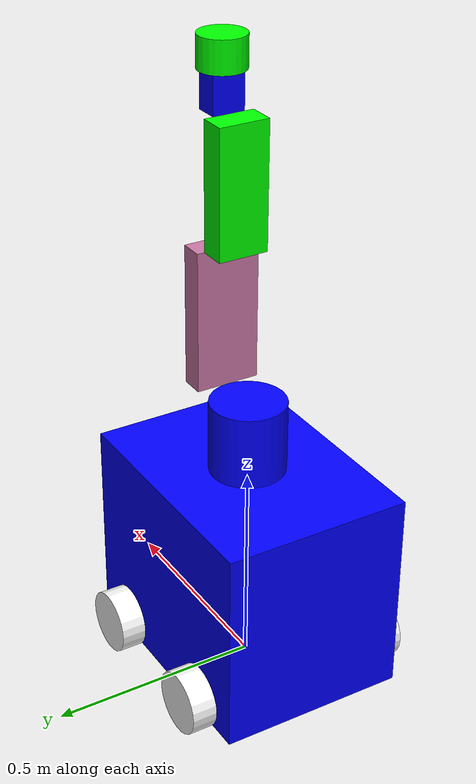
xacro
<?xml version="1.0"?>

<robot name="complete_M.A.R.S_prototype2" xmlns:xacro="http://www.ros.org/wiki/xacro">
<xacro:property name="radius" value="0.075" />
<xacro:property name="length" value="0.06" />

<!--MATERIAL COLORS -->
  <material name="blue">
    <color rgba="0 0 1 1"/>
  </material>

<material name="red">
    <color rgba="1 0 0 1"/>
  </material>

<material name="pink">
    <color rgba="0.8 0 1 0.5"/>
  </material>

    <material name="white">
    <color rgba="1 1 1 1"/>
  </material>

  <material name="green">
    <color rgba="0 1 0 1"/>
</material>

<gazebo reference="base_link_to_wheel1">
  <material>Gazebo/orange</material>
</gazebo>

<!-- Macros for inertia matrix calculations-->
<property name="M_PI" value="3.1415926535897931" />
 <xacro:macro name="sphere_inertial" params="radius mass">
    <inertial>
      <mass value="${mass}" />
      <origin xyz="0 0 0" />
      <inertia ixx="${0.4 * mass * radius * radius}" ixy="0.0" ixz="0.0"
        iyy="${0.4 * mass * radius * radius}" iyz="0.0"
        izz="${0.4 * mass * radius * radius}" />
    </inertial>
  </xacro:macro>

  <xacro:macro name="cylinder_inertial" params="radius length mass">
    <inertial>
      <mass value="${mass}" />
      <origin xyz="0 0 0" />
      <inertia ixx="${0.0833333 * mass * (3 * radius * radius + length * length)}" ixy="0.0" ixz="0.0"
        iyy="${0.0833333 * mass * (3 * radius * radius + length * length)}" iyz="0.0"
        izz="${0.5 * mass * radius * radius}" />
    </inertial>
  </xacro:macro>

    <xacro:macro name="box_inertial" params="x y z mass">
    <inertial>
      <mass value="${mass}" />
      <origin xyz="0 0 0" />
      <inertia ixx="${ 0.0833333 * mass * ( y * y + z * z )}" ixy="0.0" ixz="0.0"
        iyy="${0.0833333 * mass * ( x * x + z * z )}" iyz="0.0"
        izz="${0.0833333 * mass * (x * x + y * y)}" />
    </inertial>
</xacro:macro>

<!--  VISUAL -->
  <link name="base_link">
    <visual>
      <geometry>
        <box size="0.6 0.45 0.50"/>
       </geometry>
      <origin rpy="0 0 0" xyz="0 0 0.275"/>
       <material name="blue"/>
    </visual>
<!--  COLLISION -->
    <collision>
      <geometry>
       <box size="0.6 0.45 0.50"/>

      </geometry>
      <origin rpy="0 0 0" xyz="0 0 0.275"/>
    </collision>
<!--  INERTIAL -->
    <inertial>
      <mass value="5.0"/>

      <inertia
          ixx="0.2541" ixy="0" ixz="0"
          iyy="1.1718" iyz="0"
          izz="0.9270"
      />
    </inertial>

  </link>

 <joint name="base_link_to_wheel1" type="continuous">
  <axis xyz="0 1 0"/>
<origin rpy="0 0 0" xyz="0.17 0.255 0.075"/>
 <limit effort="100" velocity="100"/>
 <joint_properties damping="0.0" friction="0.0"/>
    <parent link="base_link"/>
    <child link="wheel1"/>

  </joint>
<!--WHEEL_1-->
  <link name="wheel1">
    <visual>
      <geometry>
      <cylinder radius="${radius}" length="${length}"/>

      </geometry>
       <origin rpy="0 1.57075 1.57075" xyz="0 0 0"/>
        <material name="white"/>
    </visual>
     <collision>
     <origin rpy="0 1.57075 1.57075" xyz="0 0 0"/>
      <geometry>
         <cylinder radius="${radius}" length="${length}"/>
      </geometry>
    </collision>
 <inertial>
      <origin xyz="0 0 0" rpy="0 1.5707 1.5707"/>
      <mass value="0.4"/>
      <cylinder_inertia m="0.4" r="0.075" h="0.06"/>
      <inertia
        ixx="0.0006825" ixy="0.0" ixz="0.0"
        iyy="0.0006825" iyz="0.0"
        izz="0.00045"/>
    </inertial>

  </link>

<!--WHEEL_2-->
<link name="wheel2">
    <visual>
      <geometry>
         <cylinder radius="${radius}" length="${length}"/>
      </geometry>
       <origin rpy="0 1.57075 1.57075" xyz="0 0 0"/>
       <material name="white"/>
    </visual>
     <collision>
     <origin rpy="0 1.57075 1.57075" xyz="0 0 0"/>
      <geometry>
         <cylinder radius="${radius}" length="${length}"/>
      </geometry>
    </collision>

    <inertial>
      <origin xyz="0 0 0" rpy="0 1.5707 1.5707"/>
      <mass value="0.4"/>
      <cylinder_inertia m="0.4" r="0.075" h="0.06"/>
      <inertia
        ixx="0.0006825" ixy="0.0" ixz="0.0"
        iyy="0.0006825" iyz="0.0"
        izz="0.00045"/>
    </inertial>
  </link>

<joint name="base_link_to_wheel2" type="continuous">
    <parent link="base_link"/>
    <child link="wheel2"/>
    <origin rpy="0 0 0" xyz="-0.17 0.255 0.075"/>
    <limit effort="100" velocity="100"/>
    <joint_properties damping="0.0" friction="0.0"/>
    <axis xyz="0 1 0"/>

  </joint>
<!--WHEEL_3-->
<link name="wheel3">
    <visual>
      <geometry>
         <cylinder radius="${radius}" length="${length}"/>
      </geometry>
       <origin rpy="0 1.57075 1.57075" xyz="0 0 0"/>
          <material name="white"/>
    </visual>
    <collision>
    <origin rpy="0 1.57075 1.57075" xyz="0 0 0"/>
      <geometry>
        <cylinder radius="${radius}" length="${length}"/>
      </geometry>
    </collision>
    <inertial>
      <origin xyz="0 0 0" rpy="0 1.5707 1.5707"/>
      <mass value="0.4"/>
      <cylinder_inertia m="0.4" r="0.075" h="0.06"/>
      <inertia
        ixx="0.0006825" ixy="0.0" ixz="0.0"
        iyy="0.0006825" iyz="0.0"
        izz="0.00045"/>
    </inertial>
  </link>

    <joint name="base_link_to_wheel3" type="continuous">
    <parent link="base_link"/>
    <child link="wheel3"/>
    <axis xyz="0 1 0"/>
    <limit effort="100" velocity="100"/>
    <joint_properties damping="0.0" friction="0.0"/>
   <origin  xyz="0.17 -0.255 0.075"/>

  </joint>
<!--WHEEL_4-->
<link name="wheel4">
    <visual>
      <geometry>
        <cylinder radius="${radius}" length="${length}"/>
      </geometry>
       <origin rpy="0 1.57075 1.57075" xyz="0 0 0"/>
      <material name="white"/>
    </visual>
<collision>
<origin rpy="0 1.57075 1.57075" xyz="0 0 0"/>
      <geometry>
         <cylinder radius="${radius}" length="${length}"/>
      </geometry>
    </collision>
    <inertial>
      <origin xyz="0 0 0" rpy="0 1.5707 1.5707"/>
      <mass value="0.4"/>
      <cylinder_inertia m="0.4" r="0.075" h="0.06"/>
      <inertia
        ixx="0.0006825" ixy="0.0" ixz="0.0"
        iyy="0.0006825" iyz="0.0"
        izz="0.00045"/>
    </inertial>
  </link>

    <joint name="base_link_to_wheel4" type="continuous">
    <parent link="base_link"/>
    <child link="wheel4"/>
    <limit effort="100" velocity="100"/>
    <joint_properties damping="0.0" friction="0.0"/>
    <axis xyz="0 1 0"/>
    <origin  xyz="-0.17 -0.255 0.075"/>

  </joint>

<!-- MANIPULATOR-->
<!-- BASE CYLINDER -->
<link name="base_cylinder">
    <visual>
    <geometry>
    <cylinder length="0.20" radius="0.09"/>
    </geometry>
    <origin rpy="0 0 0" xyz="0 0 0.10"/>
    <material name="blue"/>
    </visual>

    <collision>
    <geometry>
    <cylinder length="0.21" radius="0.10"/>
    </geometry>
    <origin rpy="0 0 0" xyz="0 0 0.10"/>
    </collision>

    <!-- PHYSICAL PROPERTIES -->
    <xacro:cylinder_inertial mass="3" length="0.20" radius="0.09"/>
</link>

    <joint name="manipulator_to_base_link" type="revolute">
    <parent link="base_link"/>
    <child link="base_cylinder"/>
    <origin rpy="0 0 0" xyz="0 0 0.5"/>
    <axis xyz="0 0 1"/>
    <limit effort="30" velocity="1" lower="-3.14" upper="3.14"/>
    <dynamics damping="50" friction="1"/>
    </joint>
<!-- LINK 2 -->
<link name="link_2">
    <visual>
        <geometry>
        <box size="0.34 0.154 0.056"/>
        </geometry>
        <origin rpy="0 1.57075 0" xyz="0.028 0 0.17"/>
    </visual>

    <collision>
        <geometry>
        <box size="0.35 0.164 0.066"/>
        </geometry>
        <origin rpy="0 1.57075 0" xyz="0.028 0 0.17"/>
    </collision>

    <!-- PHYSICAL PROPERTIES -->

   <!--// INTERCHANGING ACCORDING TO VISUAL DIMENSIONS-->
    <inertial>
    <mass value="1.153"/>
    <inertia ixx="0.01152577" ixy="0.0" ixz="0.0" iyy="0.01369149" iyz="0.0" izz="0.0030027"/>
    <origin rpy="0 1.57075 0" xyz="0 0 0.17"/>
    </inertial>

</link>

    <joint name="base_cylinder_to_link2" type="revolute">
    <parent link="base_cylinder"/>
    <child link="link_2"/>
    <origin rpy="0 0 0" xyz="0.09 0 0.20"/>
    <axis xyz="1 0 0"/>
    <limit effort="25" velocity="0.2094" lower="-1.57" upper="1.57"/>
    <dynamics damping="50" friction="1"/>
    </joint>
<!-- LINK 3 -->
<link name="link_3">
    <visual>
        <geometry>
        <box size="0.30 0.1198 0.064"/>
        </geometry>
        <origin rpy="0 1.57075 0" xyz="-0.032 0 0.15"/>
        <material name="green"/>
    </visual>

    <collision>
        <geometry>
        <box size="0.31 0.1298 0.074"/>
        </geometry>
        <origin rpy="0 1.57075 0" xyz="-0.032 0 0.15"/>
    </collision>

    <!-- PHYSICAL PROPERTIES -->

    <inertial>
    <mass value="0.744"/>
    <inertia ixx="0.02628501" ixy="0.0" ixz="0.0" iyy="0.03097518" iyz="0.0" izz="0.00646982"/>
    <origin rpy="0 1.57075 0" xyz="-0.032 0 0.15"/>
    </inertial>

</link>

    <joint name="link_2_to_link_3" type="revolute">
    <parent link="link_2"/>
    <child link="link_3"/>
    <origin rpy="0 0 0" xyz="0 0 0.34"/>
    <axis xyz="1 0 0"/>
    <limit effort="15" velocity="5.2359" lower="-1.57" upper="1.57"/>
    <dynamics damping="50" friction="1"/>
    </joint>
<!-- LINK 4 -->
<link name="link_4">
    <visual>
        <geometry>
        <box size="0.09 0.0763 0.056"/>
        </geometry>
        <origin rpy="0 1.57075 0" xyz="0.028 0 0.045"/>
        <material name="blue"/>
    </visual>

    <collision>
        <geometry>
        <box size="0.10 0.0863 0.066"/>
        </geometry>
        <origin rpy="0 1.57075 0" xyz="0.028 0 0.045"/>
    </collision>

    <!-- PHYSICAL PROPERTIES -->

    <inertial>
    <mass value="0.674"/>
    <inertia ixx="0.00050312" ixy="0.0" ixz="0.0" iyy="0.00063108" iyz="0.0" izz="0.00078193"/>
    <origin rpy="0 1.57075 0" xyz="0.028 0 0.045"/>
    </inertial>

</link>

    <joint name="link_3_to_link_4" type="revolute">
    <parent link="link_3"/>
    <child link="link_4"/>
    <origin rpy="0 0 0" xyz="0 0 0.30"/>
    <axis xyz="1 0 0"/>
    <limit effort="5" velocity="3.14" lower="-1.57" upper="1.57"/>
    <dynamics damping="50" friction="1"/>
    </joint>
<!-- GRIPPER BASE -->
<link name="gripper_base">
    <visual>
    <geometry>
    <cylinder length="0.07425" radius="0.055"/>
    </geometry>
    <origin rpy="0 0 0" xyz="0 0 0.037125"/>
    <material name="green"/>
    </visual>

    <collision>
    <geometry>
    <cylinder length="0.07425" radius="0.055"/>
    </geometry>
    <origin rpy="0 0 0" xyz="0 0 0.037125"/>
    </collision>

    <!-- PHYSICAL PROPERTIES -->

    <xacro:cylinder_inertial radius="0.055" length="0.07425" mass="0.3"/>

</link>

    <joint name="link_4_to_gripper_base" type="revolute">
    <parent link="link_4"/>
    <child link="gripper_base"/>
    <origin rpy="0 0 0" xyz="0.028 0 0.09"/>
    <axis xyz="0 0 1"/>
    <limit effort="5" velocity="3.14" lower="-3.14" upper="3.14"/>
    <dynamics damping="50" friction="1"/>
    </joint>
</robot>
